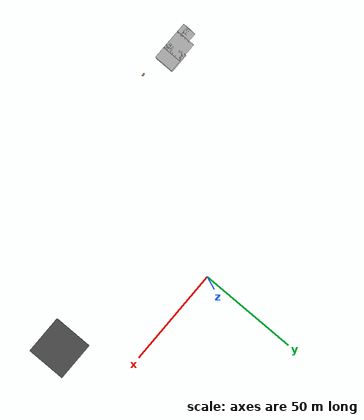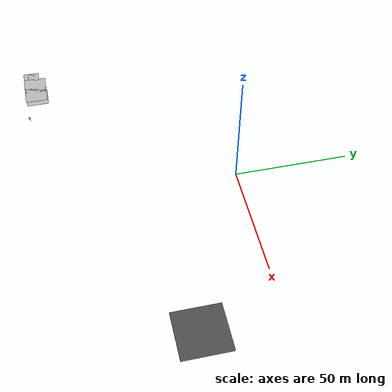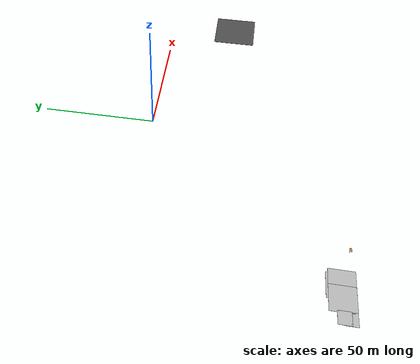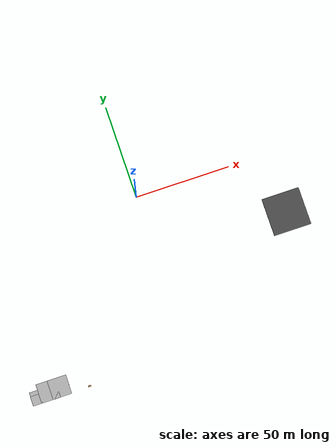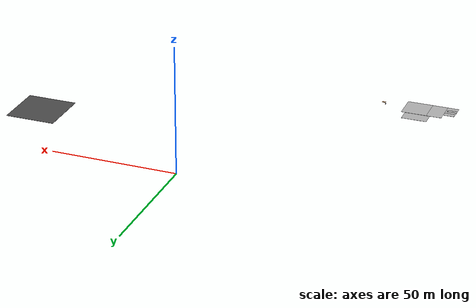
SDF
<sdf version="1.6">
 <world name="default">
  <model name="asphalt_plane">
   <static>1</static>
   <link name="link">
    <collision name="collision"><geometry><box><size>20 20 0.1</size></box></geometry></collision>
    <visual name="visual">
     <cast_shadows>0</cast_shadows>
     <geometry><box><size>20 20 0.1</size></box></geometry>
     <material>
      <script>
       <uri>model://asphalt_plane/materials/scripts</uri>
       <uri>model://asphalt_plane/materials/textures</uri>
       <name>vrc/asphalt</name>
      </script>
     </material>
    </visual>
   </link>
   <pose>70.7475 -31.5972 0 0 -0 0</pose>
  </model>
  <model name="table_7">
   <static>0</static>
   <link name="link">
    <collision name="surface">
     <pose>0 0 1 0 -0 0</pose>
     <geometry><box><size>1.5 0.8 0.03</size></box></geometry>
     <surface><friction><ode><mu>0.6</mu><mu2>0.6</mu2></ode></friction></surface>
    </collision>
    <visual name="visual1">
     <pose>0 0 1 0 -0 0</pose>
     <geometry><box><size>1.4 0.8 0.04</size></box></geometry>
     <material>
      <script><uri>file://media/materials/scripts/gazebo.material</uri><name>Gazebo/Wood</name></script>
     </material>
    </visual>
    <collision name="front_left_leg">
     <pose>0.68 0.38 0.5 0 -0 0</pose>
     <geometry><cylinder><radius>0.02</radius><length>1</length></cylinder></geometry>
    </collision>
    <visual name="front_left_leg">
     <pose>0.68 0.38 0.5 0 -0 0</pose>
     <geometry><cylinder><radius>0.02</radius><length>1</length></cylinder></geometry>
     <material>
      <script>
       <uri>model://office_env/materials/scripts</uri>
       <uri>model://office_env/materials/textures</uri>
       <name>wall</name>
      </script>
     </material>
    </visual>
    <collision name="front_right_leg">
     <pose>0.68 -0.38 0.5 0 -0 0</pose>
     <geometry><cylinder><radius>0.02</radius><length>1</length></cylinder></geometry>
    </collision>
    <visual name="front_right_leg">
     <pose>0.68 -0.38 0.5 0 -0 0</pose>
     <geometry><cylinder><radius>0.02</radius><length>1</length></cylinder></geometry>
     <material>
      <script>
       <uri>model://office_env/materials/scripts</uri>
       <uri>model://office_env/materials/textures</uri>
       <name>wall</name>
      </script>
     </material>
    </visual>
    <collision name="back_right_leg">
     <pose>-0.68 -0.38 0.5 0 -0 0</pose>
     <geometry><cylinder><radius>0.02</radius><length>1</length></cylinder></geometry>
    </collision>
    <visual name="back_right_leg">
     <pose>-0.68 -0.38 0.5 0 -0 0</pose>
     <geometry><cylinder><radius>0.02</radius><length>1</length></cylinder></geometry>
     <material>
      <script>
       <uri>model://office_env/materials/scripts</uri>
       <uri>model://office_env/materials/textures</uri>
       <name>wall</name>
      </script>
     </material>
    </visual>
    <collision name="back_left_leg">
     <pose>-0.68 0.38 0.5 0 -0 0</pose>
     <geometry><cylinder><radius>0.02</radius><length>1</length></cylinder></geometry>
    </collision>
    <visual name="back_left_leg">
     <pose>-0.68 0.38 0.5 0 -0 0</pose>
     <geometry><cylinder><radius>0.02</radius><length>1</length></cylinder></geometry>
     <material>
      <script>
       <uri>model://office_env/materials/scripts</uri>
       <uri>model://office_env/materials/textures</uri>
       <name>wall</name>
      </script>
     </material>
    </visual>
    <inertial>
     <inertia><ixx>1</ixx><ixy>0</ixy><ixz>0</ixz><iyy>1</iyy><iyz>0</iyz><izz>1</izz></inertia>
     <mass>1</mass>
    </inertial>
   </link>
   <pose>-53.1425 -84.5557 0.034993 -2e-06 3e-06 0</pose>
  </model>
  <model name="Floor_25">
   <link name="main">
    <pose>0 0 0.01 0 -0 0</pose>
    <collision name="main_Collision"><geometry><box><size>10 10 0.05</size></box></geometry></collision>
    <visual name="main_Visual">
     <geometry><box><size>10 10 0.05</size></box></geometry>
     <material>
      <script>
       <uri>model://Floor_small/materials/scripts</uri>
       <uri>model://Floor_small/materials/textures</uri>
       <name>floor</name>
      </script>
     </material>
    </visual>
   </link>
   <static>1</static>
   <pose>-67.9672 -80.1215 0 0 -0 0</pose>
  </model>
  <model name="Floor_3_clone_1">
   <link name="main">
    <pose>0 0 0.01 0 -0 0</pose>
    <collision name="main_Collision"><geometry><box><size>10 10 0.05</size></box></geometry></collision>
    <visual name="main_Visual">
     <geometry><box><size>10 10 0.05</size></box></geometry>
     <material>
      <script>
       <uri>model://Floor_small/materials/scripts</uri>
       <uri>model://Floor_small/materials/textures</uri>
       <name>floor</name>
      </script>
     </material>
    </visual>
   </link>
   <static>1</static>
   <pose>-73.7974 -80.3204 2.5 0 -0 0</pose>
  </model>
  <model name="Floor_4_clone">
   <link name="main">
    <pose>0 0 0.01 0 -0 0</pose>
    <collision name="main_Collision"><geometry><box><size>5 5 0.05</size></box></geometry></collision>
    <visual name="main_Visual">
     <geometry><box><size>5 5 0.05</size></box></geometry>
     <material>
      <script>
       <uri>model://Floor_verysmall/materials/scripts</uri>
       <uri>model://Floor_verysmall/materials/textures</uri>
       <name>floor</name>
      </script>
     </material>
    </visual>
   </link>
   <static>1</static>
   <pose>-80.6135 -80.6562 2.5 0 -0 0</pose>
  </model>
  <model name="Floor_3_clone_clone">
   <link name="main">
    <pose>0 0 0.01 0 -0 0</pose>
    <collision name="main_Collision"><geometry><box><size>10 10 0.05</size></box></geometry></collision>
    <visual name="main_Visual">
     <geometry><box><size>10 10 0.05</size></box></geometry>
     <material>
      <script>
       <uri>model://Floor_small/materials/scripts</uri>
       <uri>model://Floor_small/materials/textures</uri>
       <name>floor</name>
      </script>
     </material>
    </visual>
   </link>
   <static>1</static>
   <pose>-67.7981 -80.3492 2.5 0 -0 0</pose>
  </model>
  <model name="Floor_4_clone_0_clone">
   <link name="main">
    <pose>0 0 0.01 0 -0 0</pose>
    <collision name="main_Collision"><geometry><box><size>5 5 0.05</size></box></geometry></collision>
    <visual name="main_Visual">
     <geometry><box><size>5 5 0.05</size></box></geometry>
     <material>
      <script>
       <uri>model://Floor_verysmall/materials/scripts</uri>
       <uri>model://Floor_verysmall/materials/textures</uri>
       <name>floor</name>
      </script>
     </material>
    </visual>
   </link>
   <static>1</static>
   <pose>-80.7576 -82.7751 2.5 0 -0 0</pose>
  </model>
 </world>
</sdf>
